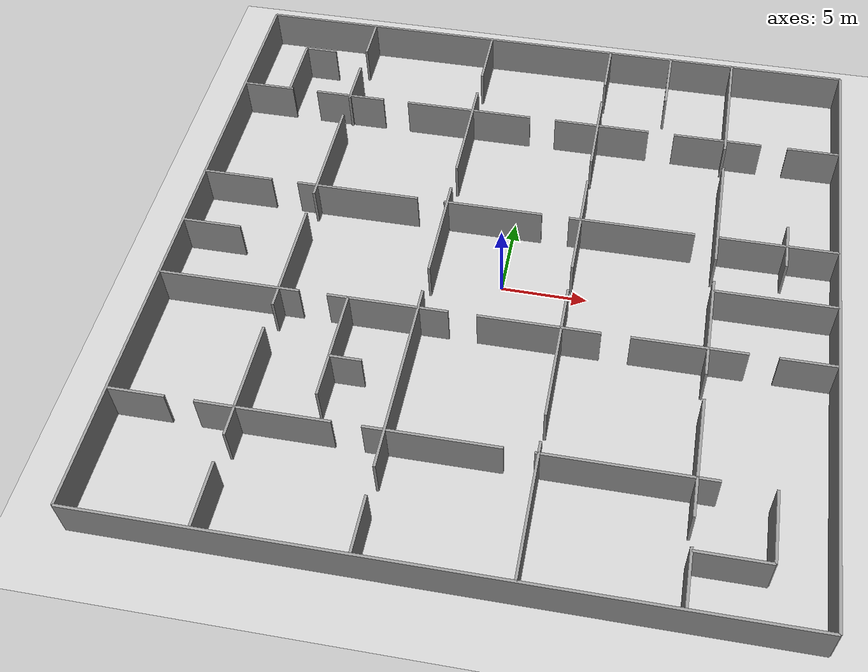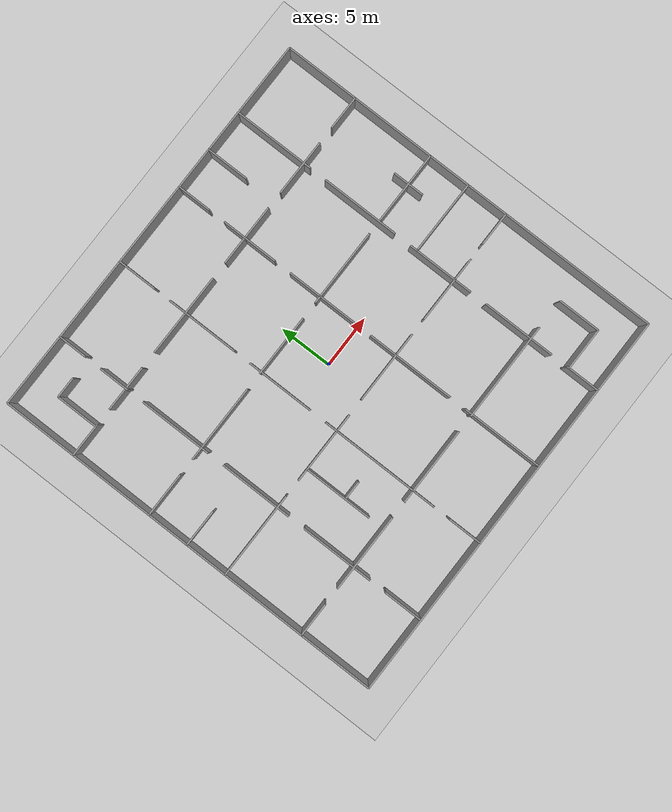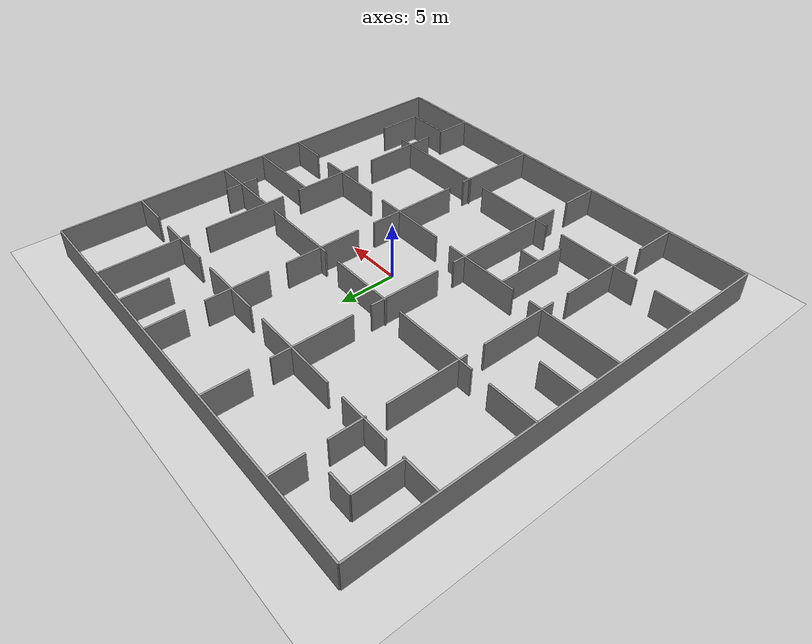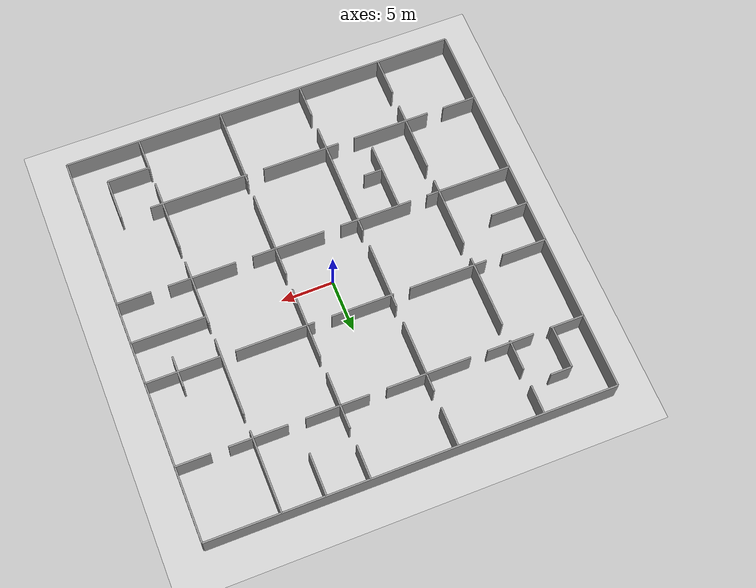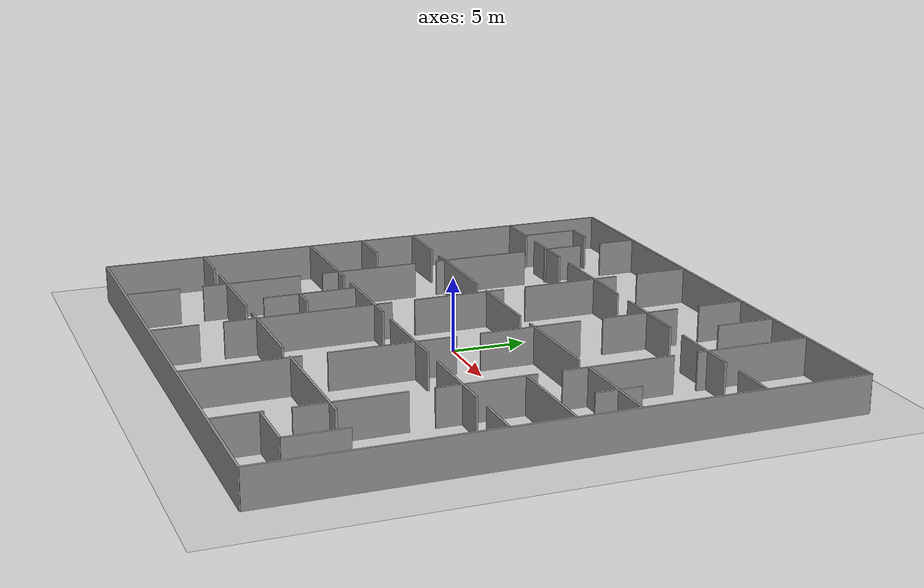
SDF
<sdf version="1.7">
  <world name="default">
    <light name="sun" type="directional">
      <cast_shadows>1</cast_shadows>
      <pose>0 0 10 0 -0 0</pose>
      <diffuse>0.8 0.8 0.8 1</diffuse>
      <specular>0.2 0.2 0.2 1</specular>
      <attenuation>
        <range>1000</range>
        <constant>0.9</constant>
        <linear>0.01</linear>
        <quadratic>0.001</quadratic>
      </attenuation>
      <direction>-0.5 0.1 -0.9</direction>
      <spot>
        <inner_angle>0</inner_angle>
        <outer_angle>0</outer_angle>
        <falloff>0</falloff>
      </spot>
    </light>
    <model name="ground_plane">
      <static>1</static>
      <link name="link">
        <collision name="collision">
          <geometry>
            <plane>
              <normal>0 0 1</normal>
              <size>100 100</size>
            </plane>
          </geometry>
          <surface>
            <friction>
              <ode>
                <mu>100</mu>
                <mu2>50</mu2>
              </ode>
              <torsional>
                <ode />
              </torsional>
            </friction>
            <contact>
              <ode />
            </contact>
            <bounce />
          </surface>
          <max_contacts>10</max_contacts>
        </collision>
        <visual name="visual">
          <cast_shadows>0</cast_shadows>
          <geometry>
            <plane>
              <normal>0 0 1</normal>
              <size>100 100</size>
            </plane>
          </geometry>
          <material>
            <script>
              <uri>file://media/materials/scripts/gazebo.material</uri>
              <name>Gazebo/Grey</name>
            </script>
          </material>
        </visual>
        <self_collide>0</self_collide>
        <enable_wind>0</enable_wind>
        <kinematic>0</kinematic>
      </link>
    </model>
    <gravity>0 0 -9.8</gravity>
    <magnetic_field>6e-06 2.3e-05 -4.2e-05</magnetic_field>
    <atmosphere type="adiabatic" />
    <physics type="ode">
      <max_step_size>0.001</max_step_size>
      <real_time_factor>1</real_time_factor>
      <real_time_update_rate>1000</real_time_update_rate>
    </physics>
    <scene>
      <ambient>0.4 0.4 0.4 1</ambient>
      <background>0.7 0.7 0.7 1</background>
      <shadows>1</shadows>
    </scene>
    <audio>
      <device>default</device>
    </audio>
    <wind />
    <spherical_coordinates>
      <surface_model>EARTH_WGS84</surface_model>
      <latitude_deg>0</latitude_deg>
      <longitude_deg>0</longitude_deg>
      <elevation>0</elevation>
      <heading_deg>0</heading_deg>
    </spherical_coordinates>
    <model name="maze40">
      <pose>0 0 0 0 0 0</pose>
      <static>1</static>
      <link name="Wall_0">
        <collision name="Wall_0_Collision">
          <geometry>
            <box>
              <size>38.000 0.150 2.500</size>
            </box>
          </geometry>
          <pose>0 0 1.250 0 0 0</pose>
          <max_contacts>10</max_contacts>
          <surface>
            <contact>
              <ode />
            </contact>
            <bounce />
            <friction>
              <torsional>
                <ode />
              </torsional>
              <ode />
            </friction>
          </surface>
        </collision>
        <visual name="Wall_0_Visual">
          <pose>0 0 1.250 0 0 0</pose>
          <geometry>
            <box>
              <size>38.000 0.150 2.500</size>
            </box>
          </geometry>
          <material>
            <script>
              <uri>file://media/materials/scripts/gazebo.material</uri>
              <name>Gazebo/Grey</name>
            </script>
            <ambient>1 1 1 1</ambient>
          </material>
          <meta>
            <layer>0</layer>
          </meta>
        </visual>
        <pose>0.000 -19.000 0 0 0 0</pose>
        <self_collide>0</self_collide>
        <enable_wind>0</enable_wind>
        <kinematic>0</kinematic>
      </link>
      <link name="Wall_1">
        <collision name="Wall_1_Collision">
          <geometry>
            <box>
              <size>38.000 0.150 2.500</size>
            </box>
          </geometry>
          <pose>0 0 1.250 0 0 0</pose>
          <max_contacts>10</max_contacts>
          <surface>
            <contact>
              <ode />
            </contact>
            <bounce />
            <friction>
              <torsional>
                <ode />
              </torsional>
              <ode />
            </friction>
          </surface>
        </collision>
        <visual name="Wall_1_Visual">
          <pose>0 0 1.250 0 0 0</pose>
          <geometry>
            <box>
              <size>38.000 0.150 2.500</size>
            </box>
          </geometry>
          <material>
            <script>
              <uri>file://media/materials/scripts/gazebo.material</uri>
              <name>Gazebo/Grey</name>
            </script>
            <ambient>1 1 1 1</ambient>
          </material>
          <meta>
            <layer>0</layer>
          </meta>
        </visual>
        <pose>0.000 19.000 0 0 0 0</pose>
        <self_collide>0</self_collide>
        <enable_wind>0</enable_wind>
        <kinematic>0</kinematic>
      </link>
      <link name="Wall_2">
        <collision name="Wall_2_Collision">
          <geometry>
            <box>
              <size>0.150 38.000 2.500</size>
            </box>
          </geometry>
          <pose>0 0 1.250 0 0 0</pose>
          <max_contacts>10</max_contacts>
          <surface>
            <contact>
              <ode />
            </contact>
            <bounce />
            <friction>
              <torsional>
                <ode />
              </torsional>
              <ode />
            </friction>
          </surface>
        </collision>
        <visual name="Wall_2_Visual">
          <pose>0 0 1.250 0 0 0</pose>
          <geometry>
            <box>
              <size>0.150 38.000 2.500</size>
            </box>
          </geometry>
          <material>
            <script>
              <uri>file://media/materials/scripts/gazebo.material</uri>
              <name>Gazebo/Grey</name>
            </script>
            <ambient>1 1 1 1</ambient>
          </material>
          <meta>
            <layer>0</layer>
          </meta>
        </visual>
        <pose>-19.000 0.000 0 0 0 0</pose>
        <self_collide>0</self_collide>
        <enable_wind>0</enable_wind>
        <kinematic>0</kinematic>
      </link>
      <link name="Wall_3">
        <collision name="Wall_3_Collision">
          <geometry>
            <box>
              <size>0.150 38.000 2.500</size>
            </box>
          </geometry>
          <pose>0 0 1.250 0 0 0</pose>
          <max_contacts>10</max_contacts>
          <surface>
            <contact>
              <ode />
            </contact>
            <bounce />
            <friction>
              <torsional>
                <ode />
              </torsional>
              <ode />
            </friction>
          </surface>
        </collision>
        <visual name="Wall_3_Visual">
          <pose>0 0 1.250 0 0 0</pose>
          <geometry>
            <box>
              <size>0.150 38.000 2.500</size>
            </box>
          </geometry>
          <material>
            <script>
              <uri>file://media/materials/scripts/gazebo.material</uri>
              <name>Gazebo/Grey</name>
            </script>
            <ambient>1 1 1 1</ambient>
          </material>
          <meta>
            <layer>0</layer>
          </meta>
        </visual>
        <pose>19.000 0.000 0 0 0 0</pose>
        <self_collide>0</self_collide>
        <enable_wind>0</enable_wind>
        <kinematic>0</kinematic>
      </link>
      <link name="Wall_4">
        <collision name="Wall_4_Collision">
          <geometry>
            <box>
              <size>0.150 3.700 2.500</size>
            </box>
          </geometry>
          <pose>0 0 1.250 0 0 0</pose>
          <max_contacts>10</max_contacts>
          <surface>
            <contact>
              <ode />
            </contact>
            <bounce />
            <friction>
              <torsional>
                <ode />
              </torsional>
              <ode />
            </friction>
          </surface>
        </collision>
        <visual name="Wall_4_Visual">
          <pose>0 0 1.250 0 0 0</pose>
          <geometry>
            <box>
              <size>0.150 3.700 2.500</size>
            </box>
          </geometry>
          <material>
            <script>
              <uri>file://media/materials/scripts/gazebo.material</uri>
              <name>Gazebo/Grey</name>
            </script>
            <ambient>1 1 1 1</ambient>
          </material>
          <meta>
            <layer>0</layer>
          </meta>
        </visual>
        <pose>-12.000 -17.150 0 0 0 0</pose>
        <self_collide>0</self_collide>
        <enable_wind>0</enable_wind>
        <kinematic>0</kinematic>
      </link>
      <link name="Wall_5">
        <collision name="Wall_5_Collision">
          <geometry>
            <box>
              <size>0.150 6.900 2.500</size>
            </box>
          </geometry>
          <pose>0 0 1.250 0 0 0</pose>
          <max_contacts>10</max_contacts>
          <surface>
            <contact>
              <ode />
            </contact>
            <bounce />
            <friction>
              <torsional>
                <ode />
              </torsional>
              <ode />
            </friction>
          </surface>
        </collision>
        <visual name="Wall_5_Visual">
          <pose>0 0 1.250 0 0 0</pose>
          <geometry>
            <box>
              <size>0.150 6.900 2.500</size>
            </box>
          </geometry>
          <material>
            <script>
              <uri>file://media/materials/scripts/gazebo.material</uri>
              <name>Gazebo/Grey</name>
            </script>
            <ambient>1 1 1 1</ambient>
          </material>
          <meta>
            <layer>0</layer>
          </meta>
        </visual>
        <pose>-12.000 -10.250 0 0 0 0</pose>
        <self_collide>0</self_collide>
        <enable_wind>0</enable_wind>
        <kinematic>0</kinematic>
      </link>
      <link name="Wall_6">
        <collision name="Wall_6_Collision">
          <geometry>
            <box>
              <size>0.150 6.900 2.500</size>
            </box>
          </geometry>
          <pose>0 0 1.250 0 0 0</pose>
          <max_contacts>10</max_contacts>
          <surface>
            <contact>
              <ode />
            </contact>
            <bounce />
            <friction>
              <torsional>
                <ode />
              </torsional>
              <ode />
            </friction>
          </surface>
        </collision>
        <visual name="Wall_6_Visual">
          <pose>0 0 1.250 0 0 0</pose>
          <geometry>
            <box>
              <size>0.150 6.900 2.500</size>
            </box>
          </geometry>
          <material>
            <script>
              <uri>file://media/materials/scripts/gazebo.material</uri>
              <name>Gazebo/Grey</name>
            </script>
            <ambient>1 1 1 1</ambient>
          </material>
          <meta>
            <layer>0</layer>
          </meta>
        </visual>
        <pose>-12.000 -1.750 0 0 0 0</pose>
        <self_collide>0</self_collide>
        <enable_wind>0</enable_wind>
        <kinematic>0</kinematic>
      </link>
      <link name="Wall_7">
        <collision name="Wall_7_Collision">
          <geometry>
            <box>
              <size>0.150 6.900 2.500</size>
            </box>
          </geometry>
          <pose>0 0 1.250 0 0 0</pose>
          <max_contacts>10</max_contacts>
          <surface>
            <contact>
              <ode />
            </contact>
            <bounce />
            <friction>
              <torsional>
                <ode />
              </torsional>
              <ode />
            </friction>
          </surface>
        </collision>
        <visual name="Wall_7_Visual">
          <pose>0 0 1.250 0 0 0</pose>
          <geometry>
            <box>
              <size>0.150 6.900 2.500</size>
            </box>
          </geometry>
          <material>
            <script>
              <uri>file://media/materials/scripts/gazebo.material</uri>
              <name>Gazebo/Grey</name>
            </script>
            <ambient>1 1 1 1</ambient>
          </material>
          <meta>
            <layer>0</layer>
          </meta>
        </visual>
        <pose>-12.000 6.750 0 0 0 0</pose>
        <self_collide>0</self_collide>
        <enable_wind>0</enable_wind>
        <kinematic>0</kinematic>
      </link>
      <link name="Wall_8">
        <collision name="Wall_8_Collision">
          <geometry>
            <box>
              <size>0.150 2.900 2.500</size>
            </box>
          </geometry>
          <pose>0 0 1.250 0 0 0</pose>
          <max_contacts>10</max_contacts>
          <surface>
            <contact>
              <ode />
            </contact>
            <bounce />
            <friction>
              <torsional>
                <ode />
              </torsional>
              <ode />
            </friction>
          </surface>
        </collision>
        <visual name="Wall_8_Visual">
          <pose>0 0 1.250 0 0 0</pose>
          <geometry>
            <box>
              <size>0.150 2.900 2.500</size>
            </box>
          </geometry>
          <material>
            <script>
              <uri>file://media/materials/scripts/gazebo.material</uri>
              <name>Gazebo/Grey</name>
            </script>
            <ambient>1 1 1 1</ambient>
          </material>
          <meta>
            <layer>0</layer>
          </meta>
        </visual>
        <pose>-12.000 13.250 0 0 0 0</pose>
        <self_collide>0</self_collide>
        <enable_wind>0</enable_wind>
        <kinematic>0</kinematic>
      </link>
      <link name="Wall_9">
        <collision name="Wall_9_Collision">
          <geometry>
            <box>
              <size>0.150 2.700 2.500</size>
            </box>
          </geometry>
          <pose>0 0 1.250 0 0 0</pose>
          <max_contacts>10</max_contacts>
          <surface>
            <contact>
              <ode />
            </contact>
            <bounce />
            <friction>
              <torsional>
                <ode />
              </torsional>
              <ode />
            </friction>
          </surface>
        </collision>
        <visual name="Wall_9_Visual">
          <pose>0 0 1.250 0 0 0</pose>
          <geometry>
            <box>
              <size>0.150 2.700 2.500</size>
            </box>
          </geometry>
          <material>
            <script>
              <uri>file://media/materials/scripts/gazebo.material</uri>
              <name>Gazebo/Grey</name>
            </script>
            <ambient>1 1 1 1</ambient>
          </material>
          <meta>
            <layer>0</layer>
          </meta>
        </visual>
        <pose>-12.000 17.650 0 0 0 0</pose>
        <self_collide>0</self_collide>
        <enable_wind>0</enable_wind>
        <kinematic>0</kinematic>
      </link>
      <link name="Wall_10">
        <collision name="Wall_10_Collision">
          <geometry>
            <box>
              <size>0.150 3.200 2.500</size>
            </box>
          </geometry>
          <pose>0 0 1.250 0 0 0</pose>
          <max_contacts>10</max_contacts>
          <surface>
            <contact>
              <ode />
            </contact>
            <bounce />
            <friction>
              <torsional>
                <ode />
              </torsional>
              <ode />
            </friction>
          </surface>
        </collision>
        <visual name="Wall_10_Visual">
          <pose>0 0 1.250 0 0 0</pose>
          <geometry>
            <box>
              <size>0.150 3.200 2.500</size>
            </box>
          </geometry>
          <material>
            <script>
              <uri>file://media/materials/scripts/gazebo.material</uri>
              <name>Gazebo/Grey</name>
            </script>
            <ambient>1 1 1 1</ambient>
          </material>
          <meta>
            <layer>0</layer>
          </meta>
        </visual>
        <pose>-4.000 -17.400 0 0 0 0</pose>
        <self_collide>0</self_collide>
        <enable_wind>0</enable_wind>
        <kinematic>0</kinematic>
      </link>
      <link name="Wall_11">
        <collision name="Wall_11_Collision">
          <geometry>
            <box>
              <size>0.150 11.400 2.500</size>
            </box>
          </geometry>
          <pose>0 0 1.250 0 0 0</pose>
          <max_contacts>10</max_contacts>
          <surface>
            <contact>
              <ode />
            </contact>
            <bounce />
            <friction>
              <torsional>
                <ode />
              </torsional>
              <ode />
            </friction>
          </surface>
        </collision>
        <visual name="Wall_11_Visual">
          <pose>0 0 1.250 0 0 0</pose>
          <geometry>
            <box>
              <size>0.150 11.400 2.500</size>
            </box>
          </geometry>
          <material>
            <script>
              <uri>file://media/materials/scripts/gazebo.material</uri>
              <name>Gazebo/Grey</name>
            </script>
            <ambient>1 1 1 1</ambient>
          </material>
          <meta>
            <layer>0</layer>
          </meta>
        </visual>
        <pose>-4.000 -8.500 0 0 0 0</pose>
        <self_collide>0</self_collide>
        <enable_wind>0</enable_wind>
        <kinematic>0</kinematic>
      </link>
      <link name="Wall_12">
        <collision name="Wall_12_Collision">
          <geometry>
            <box>
              <size>0.150 6.400 2.500</size>
            </box>
          </geometry>
          <pose>0 0 1.250 0 0 0</pose>
          <max_contacts>10</max_contacts>
          <surface>
            <contact>
              <ode />
            </contact>
            <bounce />
            <friction>
              <torsional>
                <ode />
              </torsional>
              <ode />
            </friction>
          </surface>
        </collision>
        <visual name="Wall_12_Visual">
          <pose>0 0 1.250 0 0 0</pose>
          <geometry>
            <box>
              <size>0.150 6.400 2.500</size>
            </box>
          </geometry>
          <material>
            <script>
              <uri>file://media/materials/scripts/gazebo.material</uri>
              <name>Gazebo/Grey</name>
            </script>
            <ambient>1 1 1 1</ambient>
          </material>
          <meta>
            <layer>0</layer>
          </meta>
        </visual>
        <pose>-4.000 2.000 0 0 0 0</pose>
        <self_collide>0</self_collide>
        <enable_wind>0</enable_wind>
        <kinematic>0</kinematic>
      </link>
      <link name="Wall_13">
        <collision name="Wall_13_Collision">
          <geometry>
            <box>
              <size>0.150 6.900 2.500</size>
            </box>
          </geometry>
          <pose>0 0 1.250 0 0 0</pose>
          <max_contacts>10</max_contacts>
          <surface>
            <contact>
              <ode />
            </contact>
            <bounce />
            <friction>
              <torsional>
                <ode />
              </torsional>
              <ode />
            </friction>
          </surface>
        </collision>
        <visual name="Wall_13_Visual">
          <pose>0 0 1.250 0 0 0</pose>
          <geometry>
            <box>
              <size>0.150 6.900 2.500</size>
            </box>
          </geometry>
          <material>
            <script>
              <uri>file://media/materials/scripts/gazebo.material</uri>
              <name>Gazebo/Grey</name>
            </script>
            <ambient>1 1 1 1</ambient>
          </material>
          <meta>
            <layer>0</layer>
          </meta>
        </visual>
        <pose>-4.000 10.250 0 0 0 0</pose>
        <self_collide>0</self_collide>
        <enable_wind>0</enable_wind>
        <kinematic>0</kinematic>
      </link>
      <link name="Wall_14">
        <collision name="Wall_14_Collision">
          <geometry>
            <box>
              <size>0.150 3.700 2.500</size>
            </box>
          </geometry>
          <pose>0 0 1.250 0 0 0</pose>
          <max_contacts>10</max_contacts>
          <surface>
            <contact>
              <ode />
            </contact>
            <bounce />
            <friction>
              <torsional>
                <ode />
              </torsional>
              <ode />
            </friction>
          </surface>
        </collision>
        <visual name="Wall_14_Visual">
          <pose>0 0 1.250 0 0 0</pose>
          <geometry>
            <box>
              <size>0.150 3.700 2.500</size>
            </box>
          </geometry>
          <material>
            <script>
              <uri>file://media/materials/scripts/gazebo.material</uri>
              <name>Gazebo/Grey</name>
            </script>
            <ambient>1 1 1 1</ambient>
          </material>
          <meta>
            <layer>0</layer>
          </meta>
        </visual>
        <pose>-4.000 17.150 0 0 0 0</pose>
        <self_collide>0</self_collide>
        <enable_wind>0</enable_wind>
        <kinematic>0</kinematic>
      </link>
      <link name="Wall_15">
        <collision name="Wall_15_Collision">
          <geometry>
            <box>
              <size>0.150 7.700 2.500</size>
            </box>
          </geometry>
          <pose>0 0 1.250 0 0 0</pose>
          <max_contacts>10</max_contacts>
          <surface>
            <contact>
              <ode />
            </contact>
            <bounce />
            <friction>
              <torsional>
                <ode />
              </torsional>
              <ode />
            </friction>
          </surface>
        </collision>
        <visual name="Wall_15_Visual">
          <pose>0 0 1.250 0 0 0</pose>
          <geometry>
            <box>
              <size>0.150 7.700 2.500</size>
            </box>
          </geometry>
          <material>
            <script>
              <uri>file://media/materials/scripts/gazebo.material</uri>
              <name>Gazebo/Grey</name>
            </script>
            <ambient>1 1 1 1</ambient>
          </material>
          <meta>
            <layer>0</layer>
          </meta>
        </visual>
        <pose>4.000 -15.150 0 0 0 0</pose>
        <self_collide>0</self_collide>
        <enable_wind>0</enable_wind>
        <kinematic>0</kinematic>
      </link>
      <link name="Wall_16">
        <collision name="Wall_16_Collision">
          <geometry>
            <box>
              <size>0.150 8.400 2.500</size>
            </box>
          </geometry>
          <pose>0 0 1.250 0 0 0</pose>
          <max_contacts>10</max_contacts>
          <surface>
            <contact>
              <ode />
            </contact>
            <bounce />
            <friction>
              <torsional>
                <ode />
              </torsional>
              <ode />
            </friction>
          </surface>
        </collision>
        <visual name="Wall_16_Visual">
          <pose>0 0 1.250 0 0 0</pose>
          <geometry>
            <box>
              <size>0.150 8.400 2.500</size>
            </box>
          </geometry>
          <material>
            <script>
              <uri>file://media/materials/scripts/gazebo.material</uri>
              <name>Gazebo/Grey</name>
            </script>
            <ambient>1 1 1 1</ambient>
          </material>
          <meta>
            <layer>0</layer>
          </meta>
        </visual>
        <pose>4.000 -5.500 0 0 0 0</pose>
        <self_collide>0</self_collide>
        <enable_wind>0</enable_wind>
        <kinematic>0</kinematic>
      </link>
      <link name="Wall_17">
        <collision name="Wall_17_Collision">
          <geometry>
            <box>
              <size>0.150 6.900 2.500</size>
            </box>
          </geometry>
          <pose>0 0 1.250 0 0 0</pose>
          <max_contacts>10</max_contacts>
          <surface>
            <contact>
              <ode />
            </contact>
            <bounce />
            <friction>
              <torsional>
                <ode />
              </torsional>
              <ode />
            </friction>
          </surface>
        </collision>
        <visual name="Wall_17_Visual">
          <pose>0 0 1.250 0 0 0</pose>
          <geometry>
            <box>
              <size>0.150 6.900 2.500</size>
            </box>
          </geometry>
          <material>
            <script>
              <uri>file://media/materials/scripts/gazebo.material</uri>
              <name>Gazebo/Grey</name>
            </script>
            <ambient>1 1 1 1</ambient>
          </material>
          <meta>
            <layer>0</layer>
          </meta>
        </visual>
        <pose>4.000 3.750 0 0 0 0</pose>
        <self_collide>0</self_collide>
        <enable_wind>0</enable_wind>
        <kinematic>0</kinematic>
      </link>
      <link name="Wall_18">
        <collision name="Wall_18_Collision">
          <geometry>
            <box>
              <size>0.150 5.400 2.500</size>
            </box>
          </geometry>
          <pose>0 0 1.250 0 0 0</pose>
          <max_contacts>10</max_contacts>
          <surface>
            <contact>
              <ode />
            </contact>
            <bounce />
            <friction>
              <torsional>
                <ode />
              </torsional>
              <ode />
            </friction>
          </surface>
        </collision>
        <visual name="Wall_18_Visual">
          <pose>0 0 1.250 0 0 0</pose>
          <geometry>
            <box>
              <size>0.150 5.400 2.500</size>
            </box>
          </geometry>
          <material>
            <script>
              <uri>file://media/materials/scripts/gazebo.material</uri>
              <name>Gazebo/Grey</name>
            </script>
            <ambient>1 1 1 1</ambient>
          </material>
          <meta>
            <layer>0</layer>
          </meta>
        </visual>
        <pose>4.000 11.500 0 0 0 0</pose>
        <self_collide>0</self_collide>
        <enable_wind>0</enable_wind>
        <kinematic>0</kinematic>
      </link>
      <link name="Wall_19">
        <collision name="Wall_19_Collision">
          <geometry>
            <box>
              <size>0.150 3.200 2.500</size>
            </box>
          </geometry>
          <pose>0 0 1.250 0 0 0</pose>
          <max_contacts>10</max_contacts>
          <surface>
            <contact>
              <ode />
            </contact>
            <bounce />
            <friction>
              <torsional>
                <ode />
              </torsional>
              <ode />
            </friction>
          </surface>
        </collision>
        <visual name="Wall_19_Visual">
          <pose>0 0 1.250 0 0 0</pose>
          <geometry>
            <box>
              <size>0.150 3.200 2.500</size>
            </box>
          </geometry>
          <material>
            <script>
              <uri>file://media/materials/scripts/gazebo.material</uri>
              <name>Gazebo/Grey</name>
            </script>
            <ambient>1 1 1 1</ambient>
          </material>
          <meta>
            <layer>0</layer>
          </meta>
        </visual>
        <pose>4.000 17.400 0 0 0 0</pose>
        <self_collide>0</self_collide>
        <enable_wind>0</enable_wind>
        <kinematic>0</kinematic>
      </link>
      <link name="Wall_20">
        <collision name="Wall_20_Collision">
          <geometry>
            <box>
              <size>0.150 3.200 2.500</size>
            </box>
          </geometry>
          <pose>0 0 1.250 0 0 0</pose>
          <max_contacts>10</max_contacts>
          <surface>
            <contact>
              <ode />
            </contact>
            <bounce />
            <friction>
              <torsional>
                <ode />
              </torsional>
              <ode />
            </friction>
          </surface>
        </collision>
        <visual name="Wall_20_Visual">
          <pose>0 0 1.250 0 0 0</pose>
          <geometry>
            <box>
              <size>0.150 3.200 2.500</size>
            </box>
          </geometry>
          <material>
            <script>
              <uri>file://media/materials/scripts/gazebo.material</uri>
              <name>Gazebo/Grey</name>
            </script>
            <ambient>1 1 1 1</ambient>
          </material>
          <meta>
            <layer>0</layer>
          </meta>
        </visual>
        <pose>12.000 -17.400 0 0 0 0</pose>
        <self_collide>0</self_collide>
        <enable_wind>0</enable_wind>
        <kinematic>0</kinematic>
      </link>
      <link name="Wall_21">
        <collision name="Wall_21_Collision">
          <geometry>
            <box>
              <size>0.150 6.900 2.500</size>
            </box>
          </geometry>
          <pose>0 0 1.250 0 0 0</pose>
          <max_contacts>10</max_contacts>
          <surface>
            <contact>
              <ode />
            </contact>
            <bounce />
            <friction>
              <torsional>
                <ode />
              </torsional>
              <ode />
            </friction>
          </surface>
        </collision>
        <visual name="Wall_21_Visual">
          <pose>0 0 1.250 0 0 0</pose>
          <geometry>
            <box>
              <size>0.150 6.900 2.500</size>
            </box>
          </geometry>
          <material>
            <script>
              <uri>file://media/materials/scripts/gazebo.material</uri>
              <name>Gazebo/Grey</name>
            </script>
            <ambient>1 1 1 1</ambient>
          </material>
          <meta>
            <layer>0</layer>
          </meta>
        </visual>
        <pose>12.000 -10.750 0 0 0 0</pose>
        <self_collide>0</self_collide>
        <enable_wind>0</enable_wind>
        <kinematic>0</kinematic>
      </link>
      <link name="Wall_22">
        <collision name="Wall_22_Collision">
          <geometry>
            <box>
              <size>0.150 6.400 2.500</size>
            </box>
          </geometry>
          <pose>0 0 1.250 0 0 0</pose>
          <max_contacts>10</max_contacts>
          <surface>
            <contact>
              <ode />
            </contact>
            <bounce />
            <friction>
              <torsional>
                <ode />
              </torsional>
              <ode />
            </friction>
          </surface>
        </collision>
        <visual name="Wall_22_Visual">
          <pose>0 0 1.250 0 0 0</pose>
          <geometry>
            <box>
              <size>0.150 6.400 2.500</size>
            </box>
          </geometry>
          <material>
            <script>
              <uri>file://media/materials/scripts/gazebo.material</uri>
              <name>Gazebo/Grey</name>
            </script>
            <ambient>1 1 1 1</ambient>
          </material>
          <meta>
            <layer>0</layer>
          </meta>
        </visual>
        <pose>12.000 -2.500 0 0 0 0</pose>
        <self_collide>0</self_collide>
        <enable_wind>0</enable_wind>
        <kinematic>0</kinematic>
      </link>
      <link name="Wall_23">
        <collision name="Wall_23_Collision">
          <geometry>
            <box>
              <size>0.150 7.400 2.500</size>
            </box>
          </geometry>
          <pose>0 0 1.250 0 0 0</pose>
          <max_contacts>10</max_contacts>
          <surface>
            <contact>
              <ode />
            </contact>
            <bounce />
            <friction>
              <torsional>
                <ode />
              </torsional>
              <ode />
            </friction>
          </surface>
        </collision>
        <visual name="Wall_23_Visual">
          <pose>0 0 1.250 0 0 0</pose>
          <geometry>
            <box>
              <size>0.150 7.400 2.500</size>
            </box>
          </geometry>
          <material>
            <script>
              <uri>file://media/materials/scripts/gazebo.material</uri>
              <name>Gazebo/Grey</name>
            </script>
            <ambient>1 1 1 1</ambient>
          </material>
          <meta>
            <layer>0</layer>
          </meta>
        </visual>
        <pose>12.000 6.000 0 0 0 0</pose>
        <self_collide>0</self_collide>
        <enable_wind>0</enable_wind>
        <kinematic>0</kinematic>
      </link>
      <link name="Wall_24">
        <collision name="Wall_24_Collision">
          <geometry>
            <box>
              <size>0.150 7.700 2.500</size>
            </box>
          </geometry>
          <pose>0 0 1.250 0 0 0</pose>
          <max_contacts>10</max_contacts>
          <surface>
            <contact>
              <ode />
            </contact>
            <bounce />
            <friction>
              <torsional>
                <ode />
              </torsional>
              <ode />
            </friction>
          </surface>
        </collision>
        <visual name="Wall_24_Visual">
          <pose>0 0 1.250 0 0 0</pose>
          <geometry>
            <box>
              <size>0.150 7.700 2.500</size>
            </box>
          </geometry>
          <material>
            <script>
              <uri>file://media/materials/scripts/gazebo.material</uri>
              <name>Gazebo/Grey</name>
            </script>
            <ambient>1 1 1 1</ambient>
          </material>
          <meta>
            <layer>0</layer>
          </meta>
        </visual>
        <pose>12.000 15.150 0 0 0 0</pose>
        <self_collide>0</self_collide>
        <enable_wind>0</enable_wind>
        <kinematic>0</kinematic>
      </link>
      <link name="Wall_25">
        <collision name="Wall_25_Collision">
          <geometry>
            <box>
              <size>3.200 0.150 2.500</size>
            </box>
          </geometry>
          <pose>0 0 1.250 0 0 0</pose>
          <max_contacts>10</max_contacts>
          <surface>
            <contact>
              <ode />
            </contact>
            <bounce />
            <friction>
              <torsional>
                <ode />
              </torsional>
              <ode />
            </friction>
          </surface>
        </collision>
        <visual name="Wall_25_Visual">
          <pose>0 0 1.250 0 0 0</pose>
          <geometry>
            <box>
              <size>3.200 0.150 2.500</size>
            </box>
          </geometry>
          <material>
            <script>
              <uri>file://media/materials/scripts/gazebo.material</uri>
              <name>Gazebo/Grey</name>
            </script>
            <ambient>1 1 1 1</ambient>
          </material>
          <meta>
            <layer>0</layer>
          </meta>
        </visual>
        <pose>-17.400 -12.000 0 0 0 0</pose>
        <self_collide>0</self_collide>
        <enable_wind>0</enable_wind>
        <kinematic>0</kinematic>
      </link>
      <link name="Wall_26">
        <collision name="Wall_26_Collision">
          <geometry>
            <box>
              <size>7.400 0.150 2.500</size>
            </box>
          </geometry>
          <pose>0 0 1.250 0 0 0</pose>
          <max_contacts>10</max_contacts>
          <surface>
            <contact>
              <ode />
            </contact>
            <bounce />
            <friction>
              <torsional>
                <ode />
              </torsional>
              <ode />
            </friction>
          </surface>
        </collision>
        <visual name="Wall_26_Visual">
          <pose>0 0 1.250 0 0 0</pose>
          <geometry>
            <box>
              <size>7.400 0.150 2.500</size>
            </box>
          </geometry>
          <material>
            <script>
              <uri>file://media/materials/scripts/gazebo.material</uri>
              <name>Gazebo/Grey</name>
            </script>
            <ambient>1 1 1 1</ambient>
          </material>
          <meta>
            <layer>0</layer>
          </meta>
        </visual>
        <pose>-10.500 -12.000 0 0 0 0</pose>
        <self_collide>0</self_collide>
        <enable_wind>0</enable_wind>
        <kinematic>0</kinematic>
      </link>
      <link name="Wall_27">
        <collision name="Wall_27_Collision">
          <geometry>
            <box>
              <size>7.400 0.150 2.500</size>
            </box>
          </geometry>
          <pose>0 0 1.250 0 0 0</pose>
          <max_contacts>10</max_contacts>
          <surface>
            <contact>
              <ode />
            </contact>
            <bounce />
            <friction>
              <torsional>
                <ode />
              </torsional>
              <ode />
            </friction>
          </surface>
        </collision>
        <visual name="Wall_27_Visual">
          <pose>0 0 1.250 0 0 0</pose>
          <geometry>
            <box>
              <size>7.400 0.150 2.500</size>
            </box>
          </geometry>
          <material>
            <script>
              <uri>file://media/materials/scripts/gazebo.material</uri>
              <name>Gazebo/Grey</name>
            </script>
            <ambient>1 1 1 1</ambient>
          </material>
          <meta>
            <layer>0</layer>
          </meta>
        </visual>
        <pose>-1.500 -12.000 0 0 0 0</pose>
        <self_collide>0</self_collide>
        <enable_wind>0</enable_wind>
        <kinematic>0</kinematic>
      </link>
      <link name="Wall_28">
        <collision name="Wall_28_Collision">
          <geometry>
            <box>
              <size>9.400 0.150 2.500</size>
            </box>
          </geometry>
          <pose>0 0 1.250 0 0 0</pose>
          <max_contacts>10</max_contacts>
          <surface>
            <contact>
              <ode />
            </contact>
            <bounce />
            <friction>
              <torsional>
                <ode />
              </torsional>
              <ode />
            </friction>
          </surface>
        </collision>
        <visual name="Wall_28_Visual">
          <pose>0 0 1.250 0 0 0</pose>
          <geometry>
            <box>
              <size>9.400 0.150 2.500</size>
            </box>
          </geometry>
          <material>
            <script>
              <uri>file://media/materials/scripts/gazebo.material</uri>
              <name>Gazebo/Grey</name>
            </script>
            <ambient>1 1 1 1</ambient>
          </material>
          <meta>
            <layer>0</layer>
          </meta>
        </visual>
        <pose>8.500 -12.000 0 0 0 0</pose>
        <self_collide>0</self_collide>
        <enable_wind>0</enable_wind>
        <kinematic>0</kinematic>
      </link>
      <link name="Wall_31">
        <collision name="Wall_31_Collision">
          <geometry>
            <box>
              <size>8.200 0.150 2.500</size>
            </box>
          </geometry>
          <pose>0 0 1.250 0 0 0</pose>
          <max_contacts>10</max_contacts>
          <surface>
            <contact>
              <ode />
            </contact>
            <bounce />
            <friction>
              <torsional>
                <ode />
              </torsional>
              <ode />
            </friction>
          </surface>
        </collision>
        <visual name="Wall_31_Visual">
          <pose>0 0 1.250 0 0 0</pose>
          <geometry>
            <box>
              <size>8.200 0.150 2.500</size>
            </box>
          </geometry>
          <material>
            <script>
              <uri>file://media/materials/scripts/gazebo.material</uri>
              <name>Gazebo/Grey</name>
            </script>
            <ambient>1 1 1 1</ambient>
          </material>
          <meta>
            <layer>0</layer>
          </meta>
        </visual>
        <pose>-14.900 -4.000 0 0 0 0</pose>
        <self_collide>0</self_collide>
        <enable_wind>0</enable_wind>
        <kinematic>0</kinematic>
      </link>
      <link name="Wall_32">
        <collision name="Wall_32_Collision">
          <geometry>
            <box>
              <size>6.900 0.150 2.500</size>
            </box>
          </geometry>
          <pose>0 0 1.250 0 0 0</pose>
          <max_contacts>10</max_contacts>
          <surface>
            <contact>
              <ode />
            </contact>
            <bounce />
            <friction>
              <torsional>
                <ode />
              </torsional>
              <ode />
            </friction>
          </surface>
        </collision>
        <visual name="Wall_32_Visual">
          <pose>0 0 1.250 0 0 0</pose>
          <geometry>
            <box>
              <size>6.900 0.150 2.500</size>
            </box>
          </geometry>
          <material>
            <script>
              <uri>file://media/materials/scripts/gazebo.material</uri>
              <name>Gazebo/Grey</name>
            </script>
            <ambient>1 1 1 1</ambient>
          </material>
          <meta>
            <layer>0</layer>
          </meta>
        </visual>
        <pose>-5.750 -4.000 0 0 0 0</pose>
        <self_collide>0</self_collide>
        <enable_wind>0</enable_wind>
        <kinematic>0</kinematic>
      </link>
      <link name="Wall_33">
        <collision name="Wall_33_Collision">
          <geometry>
            <box>
              <size>6.900 0.150 2.500</size>
            </box>
          </geometry>
          <pose>0 0 1.250 0 0 0</pose>
          <max_contacts>10</max_contacts>
          <surface>
            <contact>
              <ode />
            </contact>
            <bounce />
            <friction>
              <torsional>
                <ode />
              </torsional>
              <ode />
            </friction>
          </surface>
        </collision>
        <visual name="Wall_33_Visual">
          <pose>0 0 1.250 0 0 0</pose>
          <geometry>
            <box>
              <size>6.900 0.150 2.500</size>
            </box>
          </geometry>
          <material>
            <script>
              <uri>file://media/materials/scripts/gazebo.material</uri>
              <name>Gazebo/Grey</name>
            </script>
            <ambient>1 1 1 1</ambient>
          </material>
          <meta>
            <layer>0</layer>
          </meta>
        </visual>
        <pose>2.750 -4.000 0 0 0 0</pose>
        <self_collide>0</self_collide>
        <enable_wind>0</enable_wind>
        <kinematic>0</kinematic>
      </link>
      <link name="Wall_34">
        <collision name="Wall_34_Collision">
          <geometry>
            <box>
              <size>6.400 0.150 2.500</size>
            </box>
          </geometry>
          <pose>0 0 1.250 0 0 0</pose>
          <max_contacts>10</max_contacts>
          <surface>
            <contact>
              <ode />
            </contact>
            <bounce />
            <friction>
              <torsional>
                <ode />
              </torsional>
              <ode />
            </friction>
          </surface>
        </collision>
        <visual name="Wall_34_Visual">
          <pose>0 0 1.250 0 0 0</pose>
          <geometry>
            <box>
              <size>6.400 0.150 2.500</size>
            </box>
          </geometry>
          <material>
            <script>
              <uri>file://media/materials/scripts/gazebo.material</uri>
              <name>Gazebo/Grey</name>
            </script>
            <ambient>1 1 1 1</ambient>
          </material>
          <meta>
            <layer>0</layer>
          </meta>
        </visual>
        <pose>11.000 -4.000 0 0 0 0</pose>
        <self_collide>0</self_collide>
        <enable_wind>0</enable_wind>
        <kinematic>0</kinematic>
      </link>
      <link name="Wall_35">
        <collision name="Wall_35_Collision">
          <geometry>
            <box>
              <size>3.200 0.150 2.500</size>
            </box>
          </geometry>
          <pose>0 0 1.250 0 0 0</pose>
          <max_contacts>10</max_contacts>
          <surface>
            <contact>
              <ode />
            </contact>
            <bounce />
            <friction>
              <torsional>
                <ode />
              </torsional>
              <ode />
            </friction>
          </surface>
        </collision>
        <visual name="Wall_35_Visual">
          <pose>0 0 1.250 0 0 0</pose>
          <geometry>
            <box>
              <size>3.200 0.150 2.500</size>
            </box>
          </geometry>
          <material>
            <script>
              <uri>file://media/materials/scripts/gazebo.material</uri>
              <name>Gazebo/Grey</name>
            </script>
            <ambient>1 1 1 1</ambient>
          </material>
          <meta>
            <layer>0</layer>
          </meta>
        </visual>
        <pose>17.400 -4.000 0 0 0 0</pose>
        <self_collide>0</self_collide>
        <enable_wind>0</enable_wind>
        <kinematic>0</kinematic>
      </link>
      <link name="Wall_36">
        <collision name="Wall_36_Collision">
          <geometry>
            <box>
              <size>4.200 0.150 2.500</size>
            </box>
          </geometry>
          <pose>0 0 1.250 0 0 0</pose>
          <max_contacts>10</max_contacts>
          <surface>
            <contact>
              <ode />
            </contact>
            <bounce />
            <friction>
              <torsional>
                <ode />
              </torsional>
              <ode />
            </friction>
          </surface>
        </collision>
        <visual name="Wall_36_Visual">
          <pose>0 0 1.250 0 0 0</pose>
          <geometry>
            <box>
              <size>4.200 0.150 2.500</size>
            </box>
          </geometry>
          <material>
            <script>
              <uri>file://media/materials/scripts/gazebo.material</uri>
              <name>Gazebo/Grey</name>
            </script>
            <ambient>1 1 1 1</ambient>
          </material>
          <meta>
            <layer>0</layer>
          </meta>
        </visual>
        <pose>-16.900 4.000 0 0 0 0</pose>
        <self_collide>0</self_collide>
        <enable_wind>0</enable_wind>
        <kinematic>0</kinematic>
      </link>
      <link name="Wall_37">
        <collision name="Wall_37_Collision">
          <geometry>
            <box>
              <size>7.400 0.150 2.500</size>
            </box>
          </geometry>
          <pose>0 0 1.250 0 0 0</pose>
          <max_contacts>10</max_contacts>
          <surface>
            <contact>
              <ode />
            </contact>
            <bounce />
            <friction>
              <torsional>
                <ode />
              </torsional>
              <ode />
            </friction>
          </surface>
        </collision>
        <visual name="Wall_37_Visual">
          <pose>0 0 1.250 0 0 0</pose>
          <geometry>
            <box>
              <size>7.400 0.150 2.500</size>
            </box>
          </geometry>
          <material>
            <script>
              <uri>file://media/materials/scripts/gazebo.material</uri>
              <name>Gazebo/Grey</name>
            </script>
            <ambient>1 1 1 1</ambient>
          </material>
          <meta>
            <layer>0</layer>
          </meta>
        </visual>
        <pose>-9.500 4.000 0 0 0 0</pose>
        <self_collide>0</self_collide>
        <enable_wind>0</enable_wind>
        <kinematic>0</kinematic>
      </link>
      <link name="Wall_38">
        <collision name="Wall_38_Collision">
          <geometry>
            <box>
              <size>5.900 0.150 2.500</size>
            </box>
          </geometry>
          <pose>0 0 1.250 0 0 0</pose>
          <max_contacts>10</max_contacts>
          <surface>
            <contact>
              <ode />
            </contact>
            <bounce />
            <friction>
              <torsional>
                <ode />
              </torsional>
              <ode />
            </friction>
          </surface>
        </collision>
        <visual name="Wall_38_Visual">
          <pose>0 0 1.250 0 0 0</pose>
          <geometry>
            <box>
              <size>5.900 0.150 2.500</size>
            </box>
          </geometry>
          <material>
            <script>
              <uri>file://media/materials/scripts/gazebo.material</uri>
              <name>Gazebo/Grey</name>
            </script>
            <ambient>1 1 1 1</ambient>
          </material>
          <meta>
            <layer>0</layer>
          </meta>
        </visual>
        <pose>-1.250 4.000 0 0 0 0</pose>
        <self_collide>0</self_collide>
        <enable_wind>0</enable_wind>
        <kinematic>0</kinematic>
      </link>
      <link name="Wall_39">
        <collision name="Wall_39_Collision">
          <geometry>
            <box>
              <size>7.400 0.150 2.500</size>
            </box>
          </geometry>
          <pose>0 0 1.250 0 0 0</pose>
          <max_contacts>10</max_contacts>
          <surface>
            <contact>
              <ode />
            </contact>
            <bounce />
            <friction>
              <torsional>
                <ode />
              </torsional>
              <ode />
            </friction>
          </surface>
        </collision>
        <visual name="Wall_39_Visual">
          <pose>0 0 1.250 0 0 0</pose>
          <geometry>
            <box>
              <size>7.400 0.150 2.500</size>
            </box>
          </geometry>
          <material>
            <script>
              <uri>file://media/materials/scripts/gazebo.material</uri>
              <name>Gazebo/Grey</name>
            </script>
            <ambient>1 1 1 1</ambient>
          </material>
          <meta>
            <layer>0</layer>
          </meta>
        </visual>
        <pose>7.000 4.000 0 0 0 0</pose>
        <self_collide>0</self_collide>
        <enable_wind>0</enable_wind>
        <kinematic>0</kinematic>
      </link>
      <link name="Wall_40">
        <collision name="Wall_40_Collision">
          <geometry>
            <box>
              <size>6.925 0.150 2.500</size>
            </box>
          </geometry>
          <pose>0 0 1.250 0 0 0</pose>
          <max_contacts>10</max_contacts>
          <surface>
            <contact>
              <ode />
            </contact>
            <bounce />
            <friction>
              <torsional>
                <ode />
              </torsional>
              <ode />
            </friction>
          </surface>
        </collision>
        <visual name="Wall_40_Visual">
          <pose>0 0 1.250 0 0 0</pose>
          <geometry>
            <box>
              <size>6.925 0.150 2.500</size>
            </box>
          </geometry>
          <material>
            <script>
              <uri>file://media/materials/scripts/gazebo.material</uri>
              <name>Gazebo/Grey</name>
            </script>
            <ambient>1 1 1 1</ambient>
          </material>
          <meta>
            <layer>0</layer>
          </meta>
        </visual>
        <pose>15.5375 4.000 0 0 0 0</pose>
        <self_collide>0</self_collide>
        <enable_wind>0</enable_wind>
        <kinematic>0</kinematic>
      </link>
      <link name="Wall_41">
        <collision name="Wall_41_Collision">
          <geometry>
            <box>
              <size>3.200 0.150 2.500</size>
            </box>
          </geometry>
          <pose>0 0 1.250 0 0 0</pose>
          <max_contacts>10</max_contacts>
          <surface>
            <contact>
              <ode />
            </contact>
            <bounce />
            <friction>
              <torsional>
                <ode />
              </torsional>
              <ode />
            </friction>
          </surface>
        </collision>
        <visual name="Wall_41_Visual">
          <pose>0 0 1.250 0 0 0</pose>
          <geometry>
            <box>
              <size>3.200 0.150 2.500</size>
            </box>
          </geometry>
          <material>
            <script>
              <uri>file://media/materials/scripts/gazebo.material</uri>
              <name>Gazebo/Grey</name>
            </script>
            <ambient>1 1 1 1</ambient>
          </material>
          <meta>
            <layer>0</layer>
          </meta>
        </visual>
        <pose>-17.400 12.000 0 0 0 0</pose>
        <self_collide>0</self_collide>
        <enable_wind>0</enable_wind>
        <kinematic>0</kinematic>
      </link>
      <link name="Wall_42">
        <collision name="Wall_42_Collision">
          <geometry>
            <box>
              <size>4.400 0.150 2.500</size>
            </box>
          </geometry>
          <pose>0 0 1.250 0 0 0</pose>
          <max_contacts>10</max_contacts>
          <surface>
            <contact>
              <ode />
            </contact>
            <bounce />
            <friction>
              <torsional>
                <ode />
              </torsional>
              <ode />
            </friction>
          </surface>
        </collision>
        <visual name="Wall_42_Visual">
          <pose>0 0 1.250 0 0 0</pose>
          <geometry>
            <box>
              <size>4.400 0.150 2.500</size>
            </box>
          </geometry>
          <material>
            <script>
              <uri>file://media/materials/scripts/gazebo.material</uri>
              <name>Gazebo/Grey</name>
            </script>
            <ambient>1 1 1 1</ambient>
          </material>
          <meta>
            <layer>0</layer>
          </meta>
        </visual>
        <pose>-12.000 12.000 0 0 0 0</pose>
        <self_collide>0</self_collide>
        <enable_wind>0</enable_wind>
        <kinematic>0</kinematic>
      </link>
      <link name="Wall_43">
        <collision name="Wall_43_Collision">
          <geometry>
            <box>
              <size>7.900 0.150 2.500</size>
            </box>
          </geometry>
          <pose>0 0 1.250 0 0 0</pose>
          <max_contacts>10</max_contacts>
          <surface>
            <contact>
              <ode />
            </contact>
            <bounce />
            <friction>
              <torsional>
                <ode />
              </torsional>
              <ode />
            </friction>
          </surface>
        </collision>
        <visual name="Wall_43_Visual">
          <pose>0 0 1.250 0 0 0</pose>
          <geometry>
            <box>
              <size>7.900 0.150 2.500</size>
            </box>
          </geometry>
          <material>
            <script>
              <uri>file://media/materials/scripts/gazebo.material</uri>
              <name>Gazebo/Grey</name>
            </script>
            <ambient>1 1 1 1</ambient>
          </material>
          <meta>
            <layer>0</layer>
          </meta>
        </visual>
        <pose>-4.250 12.000 0 0 0 0</pose>
        <self_collide>0</self_collide>
        <enable_wind>0</enable_wind>
        <kinematic>0</kinematic>
      </link>
      <link name="Wall_44">
        <collision name="Wall_44_Collision">
          <geometry>
            <box>
              <size>5.900 0.150 2.500</size>
            </box>
          </geometry>
          <pose>0 0 1.250 0 0 0</pose>
          <max_contacts>10</max_contacts>
          <surface>
            <contact>
              <ode />
            </contact>
            <bounce />
            <friction>
              <torsional>
                <ode />
              </torsional>
              <ode />
            </friction>
          </surface>
        </collision>
        <visual name="Wall_44_Visual">
          <pose>0 0 1.250 0 0 0</pose>
          <geometry>
            <box>
              <size>5.900 0.150 2.500</size>
            </box>
          </geometry>
          <material>
            <script>
              <uri>file://media/materials/scripts/gazebo.material</uri>
              <name>Gazebo/Grey</name>
            </script>
            <ambient>1 1 1 1</ambient>
          </material>
          <meta>
            <layer>0</layer>
          </meta>
        </visual>
        <pose>4.250 12.000 0 0 0 0</pose>
        <self_collide>0</self_collide>
        <enable_wind>0</enable_wind>
        <kinematic>0</kinematic>
      </link>
      <link name="Wall_45">
        <collision name="Wall_45_Collision">
          <geometry>
            <box>
              <size>5.400 0.150 2.500</size>
            </box>
          </geometry>
          <pose>0 0 1.250 0 0 0</pose>
          <max_contacts>10</max_contacts>
          <surface>
            <contact>
              <ode />
            </contact>
            <bounce />
            <friction>
              <torsional>
                <ode />
              </torsional>
              <ode />
            </friction>
          </surface>
        </collision>
        <visual name="Wall_45_Visual">
          <pose>0 0 1.250 0 0 0</pose>
          <geometry>
            <box>
              <size>5.400 0.150 2.500</size>
            </box>
          </geometry>
          <material>
            <script>
              <uri>file://media/materials/scripts/gazebo.material</uri>
              <name>Gazebo/Grey</name>
            </script>
            <ambient>1 1 1 1</ambient>
          </material>
          <meta>
            <layer>0</layer>
          </meta>
        </visual>
        <pose>11.500 12.000 0 0 0 0</pose>
        <self_collide>0</self_collide>
        <enable_wind>0</enable_wind>
        <kinematic>0</kinematic>
      </link>
      <link name="Wall_46">
        <collision name="Wall_46_Collision">
          <geometry>
            <box>
              <size>3.200 0.150 2.500</size>
            </box>
          </geometry>
          <pose>0 0 1.250 0 0 0</pose>
          <max_contacts>10</max_contacts>
          <surface>
            <contact>
              <ode />
            </contact>
            <bounce />
            <friction>
              <torsional>
                <ode />
              </torsional>
              <ode />
            </friction>
          </surface>
        </collision>
        <visual name="Wall_46_Visual">
          <pose>0 0 1.250 0 0 0</pose>
          <geometry>
            <box>
              <size>3.200 0.150 2.500</size>
            </box>
          </geometry>
          <material>
            <script>
              <uri>file://media/materials/scripts/gazebo.material</uri>
              <name>Gazebo/Grey</name>
            </script>
            <ambient>1 1 1 1</ambient>
          </material>
          <meta>
            <layer>0</layer>
          </meta>
        </visual>
        <pose>17.400 12.000 0 0 0 0</pose>
        <self_collide>0</self_collide>
        <enable_wind>0</enable_wind>
        <kinematic>0</kinematic>
      </link>
      <link name="Wall_47">
        <collision name="Wall_47_Collision">
          <geometry>
            <box>
              <size>0.150 4.000 2.500</size>
            </box>
          </geometry>
          <pose>0 0 1.250 0 0 0</pose>
          <max_contacts>10</max_contacts>
          <surface>
            <contact>
              <ode />
            </contact>
            <bounce />
            <friction>
              <torsional>
                <ode />
              </torsional>
              <ode />
            </friction>
          </surface>
        </collision>
        <visual name="Wall_47_Visual">
          <pose>0 0 1.250 0 0 0</pose>
          <geometry>
            <box>
              <size>0.150 4.000 2.500</size>
            </box>
          </geometry>
          <material>
            <script>
              <uri>file://media/materials/scripts/gazebo.material</uri>
              <name>Gazebo/Grey</name>
            </script>
            <ambient>1 1 1 1</ambient>
          </material>
          <meta>
            <layer>0</layer>
          </meta>
        </visual>
        <pose>-16.000 14.000 0 0 0 0</pose>
        <self_collide>0</self_collide>
        <enable_wind>0</enable_wind>
        <kinematic>0</kinematic>
      </link>
      <link name="Wall_48">
        <collision name="Wall_48_Collision">
          <geometry>
            <box>
              <size>2.000 0.150 2.500</size>
            </box>
          </geometry>
          <pose>0 0 1.250 0 0 0</pose>
          <max_contacts>10</max_contacts>
          <surface>
            <contact>
              <ode />
            </contact>
            <bounce />
            <friction>
              <torsional>
                <ode />
              </torsional>
              <ode />
            </friction>
          </surface>
        </collision>
        <visual name="Wall_48_Visual">
          <pose>0 0 1.250 0 0 0</pose>
          <geometry>
            <box>
              <size>2.000 0.150 2.500</size>
            </box>
          </geometry>
          <material>
            <script>
              <uri>file://media/materials/scripts/gazebo.material</uri>
              <name>Gazebo/Grey</name>
            </script>
            <ambient>1 1 1 1</ambient>
          </material>
          <meta>
            <layer>0</layer>
          </meta>
        </visual>
        <pose>-15.000 16.000 0 0 0 0</pose>
        <self_collide>0</self_collide>
        <enable_wind>0</enable_wind>
        <kinematic>0</kinematic>
      </link>
      <link name="Wall_49">
        <collision name="Wall_49_Collision">
          <geometry>
            <box>
              <size>0.150 4.000 2.500</size>
            </box>
          </geometry>
          <pose>0 0 1.250 0 0 0</pose>
          <max_contacts>10</max_contacts>
          <surface>
            <contact>
              <ode />
            </contact>
            <bounce />
            <friction>
              <torsional>
                <ode />
              </torsional>
              <ode />
            </friction>
          </surface>
        </collision>
        <visual name="Wall_49_Visual">
          <pose>0 0 1.250 0 0 0</pose>
          <geometry>
            <box>
              <size>0.150 4.000 2.500</size>
            </box>
          </geometry>
          <material>
            <script>
              <uri>file://media/materials/scripts/gazebo.material</uri>
              <name>Gazebo/Grey</name>
            </script>
            <ambient>1 1 1 1</ambient>
          </material>
          <meta>
            <layer>0</layer>
          </meta>
        </visual>
        <pose>16.000 -14.000 0 0 0 0</pose>
        <self_collide>0</self_collide>
        <enable_wind>0</enable_wind>
        <kinematic>0</kinematic>
      </link>
      <link name="Wall_50">
        <collision name="Wall_50_Collision">
          <geometry>
            <box>
              <size>4.000 0.150 2.500</size>
            </box>
          </geometry>
          <pose>0 0 1.250 0 0 0</pose>
          <max_contacts>10</max_contacts>
          <surface>
            <contact>
              <ode />
            </contact>
            <bounce />
            <friction>
              <torsional>
                <ode />
              </torsional>
              <ode />
            </friction>
          </surface>
        </collision>
        <visual name="Wall_50_Visual">
          <pose>0 0 1.250 0 0 0</pose>
          <geometry>
            <box>
              <size>4.000 0.150 2.500</size>
            </box>
          </geometry>
          <material>
            <script>
              <uri>file://media/materials/scripts/gazebo.material</uri>
              <name>Gazebo/Grey</name>
            </script>
            <ambient>1 1 1 1</ambient>
          </material>
          <meta>
            <layer>0</layer>
          </meta>
        </visual>
        <pose>14.000 -16.000 0 0 0 0</pose>
        <self_collide>0</self_collide>
        <enable_wind>0</enable_wind>
        <kinematic>0</kinematic>
      </link>
      <link name="Wall_51">
        <collision name="Wall_51_Collision">
          <geometry>
            <box>
              <size>0.150 3.000 2.500</size>
            </box>
          </geometry>
          <pose>0 0 1.250 0 0 0</pose>
          <max_contacts>10</max_contacts>
          <surface>
            <contact>
              <ode />
            </contact>
            <bounce />
            <friction>
              <torsional>
                <ode />
              </torsional>
              <ode />
            </friction>
          </surface>
        </collision>
        <visual name="Wall_51_Visual">
          <pose>0 0 1.250 0 0 0</pose>
          <geometry>
            <box>
              <size>0.150 3.000 2.500</size>
            </box>
          </geometry>
          <material>
            <script>
              <uri>file://media/materials/scripts/gazebo.material</uri>
              <name>Gazebo/Grey</name>
            </script>
            <ambient>1 1 1 1</ambient>
          </material>
          <meta>
            <layer>0</layer>
          </meta>
        </visual>
        <pose>16.000 4.000 0 0 0 0</pose>
        <self_collide>0</self_collide>
        <enable_wind>0</enable_wind>
        <kinematic>0</kinematic>
      </link>
      <link name="Wall_52">
        <collision name="Wall_52_Collision">
          <geometry>
            <box>
              <size>3.500 0.150 2.500</size>
            </box>
          </geometry>
          <pose>0 0 1.250 0 0 0</pose>
          <max_contacts>10</max_contacts>
          <surface>
            <contact>
              <ode />
            </contact>
            <bounce />
            <friction>
              <torsional>
                <ode />
              </torsional>
              <ode />
            </friction>
          </surface>
        </collision>
        <visual name="Wall_52_Visual">
          <pose>0 0 1.250 0 0 0</pose>
          <geometry>
            <box>
              <size>3.500 0.150 2.500</size>
            </box>
          </geometry>
          <material>
            <script>
              <uri>file://media/materials/scripts/gazebo.material</uri>
              <name>Gazebo/Grey</name>
            </script>
            <ambient>1 1 1 1</ambient>
          </material>
          <meta>
            <layer>0</layer>
          </meta>
        </visual>
        <pose>-17.250 0.000 0 0 0 0</pose>
        <self_collide>0</self_collide>
        <enable_wind>0</enable_wind>
        <kinematic>0</kinematic>
      </link>
      <link name="Wall_53">
        <collision name="Wall_53_Collision">
          <geometry>
            <box>
              <size>7.000 0.150 2.500</size>
            </box>
          </geometry>
          <pose>0 0 1.250 0 0 0</pose>
          <max_contacts>10</max_contacts>
          <surface>
            <contact>
              <ode />
            </contact>
            <bounce />
            <friction>
              <torsional>
                <ode />
              </torsional>
              <ode />
            </friction>
          </surface>
        </collision>
        <visual name="Wall_53_Visual">
          <pose>0 0 1.250 0 0 0</pose>
          <geometry>
            <box>
              <size>7.000 0.150 2.500</size>
            </box>
          </geometry>
          <material>
            <script>
              <uri>file://media/materials/scripts/gazebo.material</uri>
              <name>Gazebo/Grey</name>
            </script>
            <ambient>1 1 1 1</ambient>
          </material>
          <meta>
            <layer>0</layer>
          </meta>
        </visual>
        <pose>15.500 0.000 0 0 0 0</pose>
        <self_collide>0</self_collide>
        <enable_wind>0</enable_wind>
        <kinematic>0</kinematic>
      </link>
      <link name="Wall_54">
        <collision name="Wall_54_Collision">
          <geometry>
            <box>
              <size>0.150 4.000 2.500</size>
            </box>
          </geometry>
          <pose>0 0 1.250 0 0 0</pose>
          <max_contacts>10</max_contacts>
          <surface>
            <contact>
              <ode />
            </contact>
            <bounce />
            <friction>
              <torsional>
                <ode />
              </torsional>
              <ode />
            </friction>
          </surface>
        </collision>
        <visual name="Wall_54_Visual">
          <pose>0 0 1.250 0 0 0</pose>
          <geometry>
            <box>
              <size>0.150 4.000 2.500</size>
            </box>
          </geometry>
          <material>
            <script>
              <uri>file://media/materials/scripts/gazebo.material</uri>
              <name>Gazebo/Grey</name>
            </script>
            <ambient>1 1 1 1</ambient>
          </material>
          <meta>
            <layer>0</layer>
          </meta>
        </visual>
        <pose>8.000 17.000 0 0 0 0</pose>
        <self_collide>0</self_collide>
        <enable_wind>0</enable_wind>
        <kinematic>0</kinematic>
      </link>
      <link name="Wall_56">
        <collision name="Wall_56_Collision">
          <geometry>
            <box>
              <size>0.150 6.500 2.500</size>
            </box>
          </geometry>
          <pose>0 0 1.250 0 0 0</pose>
          <max_contacts>10</max_contacts>
          <surface>
            <contact>
              <ode />
            </contact>
            <bounce />
            <friction>
              <torsional>
                <ode />
              </torsional>
              <ode />
            </friction>
          </surface>
        </collision>
        <visual name="Wall_56_Visual">
          <pose>0 0 1.250 0 0 0</pose>
          <geometry>
            <box>
              <size>0.150 6.500 2.500</size>
            </box>
          </geometry>
          <material>
            <script>
              <uri>file://media/materials/scripts/gazebo.material</uri>
              <name>Gazebo/Grey</name>
            </script>
            <ambient>1 1 1 1</ambient>
          </material>
          <meta>
            <layer>0</layer>
          </meta>
        </visual>
        <pose>-8.000 -7.250 0 0 0 0</pose>
        <self_collide>0</self_collide>
        <enable_wind>0</enable_wind>
        <kinematic>0</kinematic>
      </link>
      <link name="Wall_57">
        <collision name="Wall_57_Collision">
          <geometry>
            <box>
              <size>1.800 0.150 2.500</size>
            </box>
          </geometry>
          <pose>0 0 1.250 0 0 0</pose>
          <max_contacts>10</max_contacts>
          <surface>
            <contact>
              <ode />
            </contact>
            <bounce />
            <friction>
              <torsional>
                <ode />
              </torsional>
              <ode />
            </friction>
          </surface>
        </collision>
        <visual name="Wall_57_Visual">
          <pose>0 0 1.250 0 0 0</pose>
          <geometry>
            <box>
              <size>1.800 0.150 2.500</size>
            </box>
          </geometry>
          <material>
            <script>
              <uri>file://media/materials/scripts/gazebo.material</uri>
              <name>Gazebo/Grey</name>
            </script>
            <ambient>1 1 1 1</ambient>
          </material>
          <meta>
            <layer>0</layer>
          </meta>
        </visual>
        <pose>-7.100 -8.000 0 0 0 0</pose>
        <self_collide>0</self_collide>
        <enable_wind>0</enable_wind>
        <kinematic>0</kinematic>
      </link>
    </model>
  </world>
</sdf>
